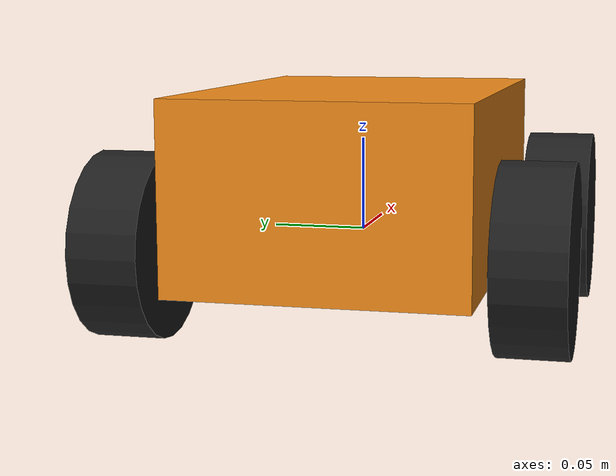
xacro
<?xml version="1.0"?>
<!-- Basic differential drive mobile base -->
<robot xmlns:xacro="http://www.ros.org/wiki/xacro" name="diffdrive_robot">
  <xacro:arg name="prefix" default="" />

  <xacro:include filename="$(find murin_base)/urdf/diffbot_description.urdf.xacro" />
  <xacro:include filename="$(find murin_base)/urdf/imu.urdf.xacro" />

  <!-- Import Rviz colors -->
  <xacro:include filename="$(find murin_base)/urdf/diffbot.materials.xacro" />

  <!-- Import diffbot ros2_control description -->
  <xacro:include filename="$(find murin_base)/ros2_control/diffbot.ros2_control.xacro" />

  <xacro:diffbot prefix="$(arg prefix)" />

  <xacro:diffbot_ros2_control name="DiffBot" prefix="$(arg prefix)" />

</robot>

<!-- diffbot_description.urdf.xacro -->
<robot xmlns:xacro="http://www.ros.org/wiki/xacro">

  <xacro:macro name="diffbot" params="prefix">

    <!-- Constants for robot dimensions -->
    <xacro:property name="PI" value="3.1415926535897931"/>
    <xacro:property name="base_mass" value="0.3" /> <!-- arbitrary value for base mass -->
    <xacro:property name="base_width" value="0.225" />
    <xacro:property name="base_length" value="0.153" />
    <xacro:property name="base_height" value="0.0975" />
    <xacro:property name="wheel_mass" value="0.3" /> <!-- arbitrary value for wheel mass -->
    <xacro:property name="wheel_len" value="0.036" />
    <xacro:property name="wheel_radius" value="0.048" />
    <xacro:property name="caster_wheel_mass" value="0.1" /> <!-- arbitrary value for caster wheel mass -->
    <xacro:property name="caster_wheel_radius" value="0.048" />
    <xacro:property name="z_offset" value="-${base_height/2}" /> <!-- Space btw top of beam and the each joint -->
    <xacro:property name="wheel_separation" value="0.205"/>
    <xacro:property name="wheel_offset_x" value="0.073"/>
    <xacro:property name="wheel_offset_y" value="${wheel_separation/2}"/>
    <xacro:property name="chassis_offset_z" value="0.02"/>

    <!-- Base Link -->
    <link name="${prefix}base_link">
      <collision>
        <origin xyz="0 0 ${base_height/2-chassis_offset_z}" rpy="0 0 0"/>
        <geometry>
          <box size="${base_width} ${base_length} ${base_height}"/>
        </geometry>
      </collision>

      <visual>
        <origin xyz="0 0 ${base_height/2-chassis_offset_z}" rpy="0 0 0"/>
        <geometry>
          <box size="${base_width} ${base_length} ${base_height}"/>
        </geometry>
        <material name="orange"/>
      </visual>

    </link>

    <joint name="base_footprint_joint" type="fixed">
        <parent link="base_link"/>
        <child link="base_footprint"/>
        <origin xyz="0 0 -0.048" rpy="0 0 0"/>
    </joint>
    <link name="base_footprint">
    </link>

    <joint name="${prefix}rear_left_wheel_joint" type="continuous">
      <parent link="${prefix}base_link"/>
      <child link="${prefix}rear_left_wheel"/>
      <origin xyz="-${wheel_offset_x} ${wheel_offset_y} 0" rpy="0 0 0"/>
      <axis xyz="0 1 0"/>
      <dynamics damping="0.2"/>
    </joint>

    <!-- left wheel Link -->
    <link name="${prefix}rear_left_wheel">
      <collision>
        <origin xyz="0 0 0" rpy="${PI/2} 0 0"/>
        <geometry>
          <cylinder length="${wheel_len}" radius="${wheel_radius}"/>
        </geometry>
      </collision>

      <visual>
        <origin xyz="0 0 0" rpy="${PI/2} 0 0"/>
        <geometry>
          <cylinder length="${wheel_len}" radius="${wheel_radius}"/>
        </geometry>
        <material name="black"/>
      </visual>

      <inertial>
        <origin xyz="0 0 0" rpy="${PI/2} 0 0"/>
        <mass value="${wheel_mass}"/>
        <inertia
          ixx="${wheel_mass / 12.0 * (3*wheel_radius + wheel_len*wheel_len)}" ixy="0.0" ixz="0.0"
          iyy="${wheel_mass / 12.0 * wheel_radius*wheel_radius}" iyz="0.0"
          izz="${wheel_mass / 12.0 * wheel_radius*wheel_radius}"/>
      </inertial>
    </link>

    <joint name="${prefix}front_left_wheel_joint" type="continuous">
      <parent link="${prefix}base_link"/>
      <child link="${prefix}front_left_wheel"/>
      <origin xyz="${wheel_offset_x} ${wheel_offset_y} 0" rpy="0 0 0"/>
      <axis xyz="0 1 0"/>
      <dynamics damping="0.2"/>
    </joint>

    <!-- left wheel Link -->
    <link name="${prefix}front_left_wheel">
      <collision>
        <origin xyz="0 0 0" rpy="${PI/2} 0 0"/>
        <geometry>
          <cylinder length="${wheel_len}" radius="${wheel_radius}"/>
        </geometry>
      </collision>

      <visual>
        <origin xyz="0 0 0" rpy="${PI/2} 0 0"/>
        <geometry>
          <cylinder length="${wheel_len}" radius="${wheel_radius}"/>
        </geometry>
        <material name="black"/>
      </visual>

      <inertial>
        <origin xyz="0 0 0" rpy="${PI/2} 0 0"/>
        <mass value="${wheel_mass}"/>
        <inertia
          ixx="${wheel_mass / 12.0 * (3*wheel_radius + wheel_len*wheel_len)}" ixy="0.0" ixz="0.0"
          iyy="${wheel_mass / 12.0 * wheel_radius*wheel_radius}" iyz="0.0"
          izz="${wheel_mass / 12.0 * wheel_radius*wheel_radius}"/>
      </inertial>
    </link>

    <joint name="${prefix}rear_right_wheel_joint" type="continuous">
      <parent link="${prefix}base_link"/>
      <child link="${prefix}rear_right_wheel"/>
      <origin xyz="-${wheel_offset_x} -${wheel_offset_y} 0" rpy="0 0 0"/>
      <axis xyz="0 1 0"/>
      <dynamics damping="0.2"/>
    </joint>

    <!-- right wheel Link -->
    <link name="${prefix}rear_right_wheel">
      <collision>
        <origin xyz="0 0 0" rpy="${PI/2} 0 0"/>
        <geometry>
          <cylinder length="${wheel_len}" radius="${wheel_radius}"/>
        </geometry>
      </collision>

      <visual>
        <origin xyz="0 0 0" rpy="${PI/2} 0 0"/>
        <geometry>
          <cylinder length="${wheel_len}" radius="${wheel_radius}"/>
        </geometry>
        <material name="black"/>
      </visual>

      <inertial>
        <origin xyz="0 0 0" rpy="${PI/2} 0 0"/>
        <mass value="${wheel_mass}"/>
        <inertia
          ixx="${wheel_mass / 12.0 * (3*wheel_radius + wheel_len*wheel_len)}" ixy="0.0" ixz="0.0"
          iyy="${wheel_mass / 12.0 * wheel_radius*wheel_radius}" iyz="0.0"
          izz="${wheel_mass / 12.0 * wheel_radius*wheel_radius}"/>
      </inertial>
    </link>

    <joint name="${prefix}front_right_wheel_joint" type="continuous">
      <parent link="${prefix}base_link"/>
      <child link="${prefix}front_right_wheel"/>
      <origin xyz="${wheel_offset_x} -${wheel_offset_y} 0" rpy="0 0 0"/>
      <axis xyz="0 1 0"/>
      <dynamics damping="0.2"/>
    </joint>

    <!-- right wheel Link -->
    <link name="${prefix}front_right_wheel">
      <collision>
        <origin xyz="0 0 0" rpy="${PI/2} 0 0"/>
        <geometry>
          <cylinder length="${wheel_len}" radius="${wheel_radius}"/>
        </geometry>
      </collision>

      <visual>
        <origin xyz="0 0 0" rpy="${PI/2} 0 0"/>
        <geometry>
          <cylinder length="${wheel_len}" radius="${wheel_radius}"/>
        </geometry>
        <material name="black"/>
      </visual>

      <inertial>
        <origin xyz="0 0 0" rpy="${PI/2} 0 0"/>
        <mass value="${wheel_mass}"/>
        <inertia
          ixx="${wheel_mass / 12.0 * (3*wheel_radius + wheel_len*wheel_len)}" ixy="0.0" ixz="0.0"
          iyy="${wheel_mass / 12.0 * wheel_radius*wheel_radius}" iyz="0.0"
          izz="${wheel_mass / 12.0 * wheel_radius*wheel_radius}"/>
      </inertial>
    </link>

  </xacro:macro>

</robot>

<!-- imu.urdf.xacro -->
<robot xmlns:xacro="http://ros.org/wiki/xacro">

  <!-- Imu sensor  -->
  <link name="imu_link">
    <visual name="imu_visual">
      <geometry>
        <box size="0.05 0.05 0.05"/>
      </geometry>
    </visual>
  </link>

  <joint name="imu_joint" type="fixed">
    <parent link="base_link"/>
    <child link="imu_link"/>
    <origin xyz="0.045 0 0.0175" rpy="0 0 0"/>
  </joint>

 <gazebo reference="imu_link">
   <sensor name="mpu6050_imu" type="imu">
    <plugin name="imu_controller" filename="libgazebo_ros_imu_sensor.so">
       <ros>
         <remapping>~/out:=imu_broadcaster/imu</remapping>
       </ros>
      <initial_orientation_as_reference>false</initial_orientation_as_reference>
    </plugin>
     <always_on>true</always_on>
     <update_rate>100</update_rate>
     <visualize>true</visualize>
     <imu>
       <angular_velocity>
         <x>
           <noise type="gaussian">
             <mean>0.0</mean>
             <stddev>2e-4</stddev>
           </noise>
         </x>
         <y>
           <noise type="gaussian">
             <mean>0.0</mean>
             <stddev>2e-4</stddev>
           </noise>
         </y>
         <z>
           <noise type="gaussian">
             <mean>0.0</mean>
             <stddev>2e-4</stddev>
           </noise>
         </z>
       </angular_velocity>
       <linear_acceleration>
         <x>
           <noise type="gaussian">
             <mean>0.0</mean>
             <stddev>1.7e-2</stddev>
           </noise>
         </x>
         <y>
           <noise type="gaussian">
             <mean>0.0</mean>
             <stddev>1.7e-2</stddev>
           </noise>
         </y>
         <z>
           <noise type="gaussian">
             <mean>0.0</mean>
             <stddev>1.7e-2</stddev>
           </noise>
         </z>
       </linear_acceleration>
       <orientation>
         <x>
           <noise type="gaussian">
              <mean>0.0</mean>
              <stddev>2e-3</stddev>
            </noise>
          </x>
          <y>
            <noise type="gaussian">
              <mean>0.0</mean>
              <stddev>2e-3</stddev>
            </noise>
          </y>
          <z>
            <noise type="gaussian">
              <mean>0.0</mean>
              <stddev>2e-3</stddev>
            </noise>
          </z>
        </orientation>
     </imu>
   </sensor>
 </gazebo>

</robot>
